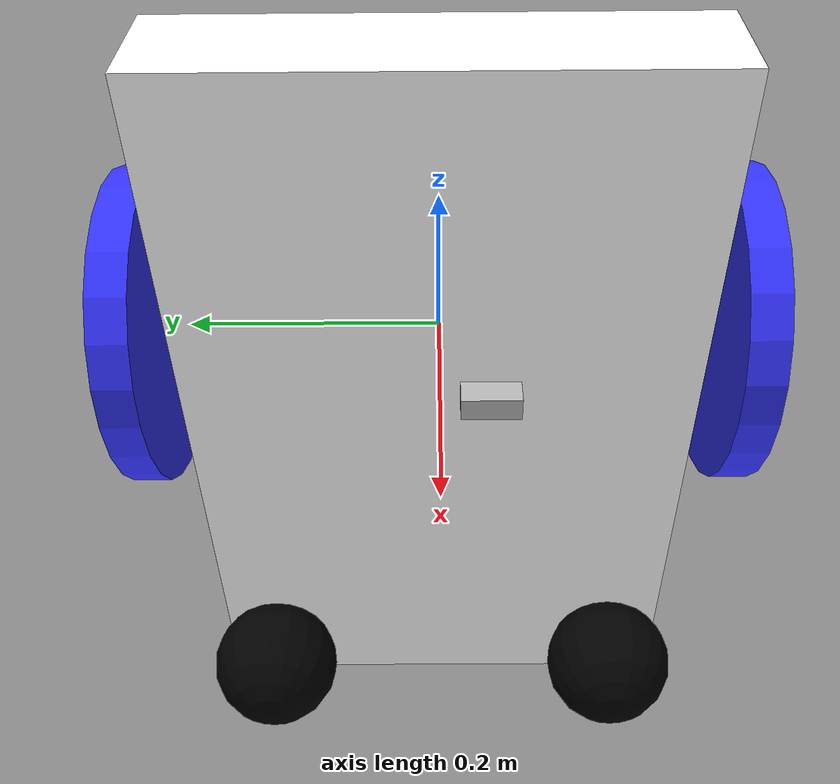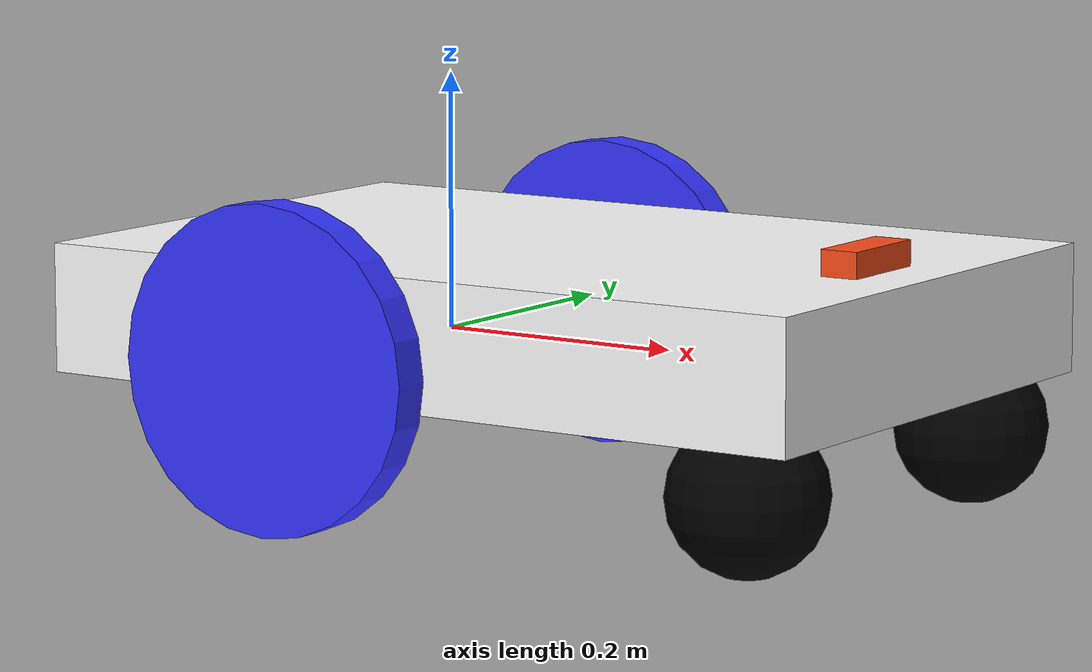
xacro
<?xml version="1.0"?>
<robot xmlns:xacro="http://www.ros.org/wiki/xacro"  name="robot">

    <xacro:arg name="sim_mode" default="false"/>

    <xacro:include filename = "robot_core.xacro"/>
    <xacro:include filename = "imu.xacro"/>
    <xacro:include filename = "depth_camera.xacro"/>
    <xacro:include filename = "ros2_control.xacro"/>

</robot>

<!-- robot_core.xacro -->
<robot xmlns:xacro="http://www.ros.org/wiki/xacro"  name="robot">

    <xacro:include filename="inertial_macros.xacro"/>

    <material name="white" >
        <color rgba="1 1 1 1" />
    </material>

    <material name="orange" >
        <color rgba="1 0.3 0.1 1" />
    </material>

    <material name="black" >
        <color rgba="0 0 0 1" />
    </material>

    <material name="blue" >
        <color rgba="0.2 0.2 1 1" />
    </material>

    <!-- BASE LINK  -->

    <link name="base_link">

    </link>

    <joint name="base_footprint_joint" type="fixed">
        <parent link="base_link"/>
        <child link="base_footprint"/>
    </joint>

    <link name="base_footprint">

    </link>

    <!-- CHASSIS LINK -->

    <joint name="chassis_joint" type="fixed">
        <parent link="base_link"/>
        <child link="chassis"/>
        <origin xyz="-0.22 0 -0.05"/>
    </joint>

    <link name="chassis">
        <visual>
            <origin xyz="0.325 0 .075"/>
            <geometry>
                <box size="0.65 0.43 0.10"/>
            </geometry>
            <material name="white"/>
        </visual>
        <collision>
            <origin xyz="0.325 0 .075"/>
            <geometry>
                <box size="0.65 0.43 0.15"/>
            </geometry>
        </collision>
        <xacro:inertial_box mass="1.5" x="0.65" y="0.43" z="0.15">
            <origin xyz="0.325 0 0.075" rpy="0 0 0"/>
        </xacro:inertial_box>
    </link>

    <!-- WHEELS -->

    <joint name="left_wheel_joint" type="continuous">
        <parent link="base_link"/>
        <child link="left_wheel"/>
        <origin xyz="0 0.215 0" rpy="-${pi/2} 0 0"/>
        <axis xyz="0 0 1"/>
    </joint>

    <link name="left_wheel">
        <visual>
            <origin xyz="0 0 .015"/>
            <geometry>
                <cylinder radius=".125" length=".03"/>
            </geometry>
            <material name="blue"/>
        </visual>
        <collision>
            <origin xyz="0 0 .015"/>
            <geometry>
                <cylinder radius=".125" length=".03"/>
            </geometry>
        </collision>
        <xacro:inertial_cylinder mass="0.5" length="0.03" radius="0.125">
            <origin xyz="0 0 .015" rpy="0 0 0"/>
        </xacro:inertial_cylinder>
    </link>

    <joint name="right_wheel_joint" type="continuous">
        <parent link="base_link"/>
        <child link="right_wheel"/>
        <origin xyz="0 -0.215 0" rpy="${pi/2} 0 0"/>
        <axis xyz="0 0 -1"/>
    </joint>

    <link name="right_wheel">
        <visual>
            <origin xyz="0 0 .015"/>
            <geometry>
                <cylinder radius=".125" length=".03"/>
            </geometry>
            <material name="blue"/>
        </visual>
        <collision>
            <origin xyz="0 0 .015"/>
            <geometry>
                <cylinder radius=".125" length=".03"/>
            </geometry>
        </collision>
        <xacro:inertial_cylinder mass="0.5" length="0.03" radius="0.125">
            <origin xyz="0 0 .015" rpy="0 0 0"/>
        </xacro:inertial_cylinder>
    </link>

    <!-- CASTER WHEELS -->

    <joint name="right_caster_joint" type="fixed">
        <parent link="base_link"/>
        <child link="right_caster"/>
        <origin xyz="0.37 -0.165 -.065"/>
    </joint>

    <link name="right_caster">
        <visual>
            <origin xyz="0 0 0"/>
            <geometry>
                <sphere radius=".06"/>
            </geometry>
            <material name="black"/>
        </visual>
        <collision>
            <geometry>
                <sphere radius=".06"/>
            </geometry>
        </collision>
        <xacro:inertial_sphere mass="0.5" radius="0.06">
            <origin xyz="0 0 0" rpy="0 0 0"/>
        </xacro:inertial_sphere>
    </link>

    <gazebo reference="right_caster">
        <material>Gazebo/White</material>
        <mu1 value="0.001"/>
        <mu2 value="0.001"/>
    </gazebo>

    <joint name="left_caster_joint" type="fixed">
        <parent link="base_link"/>
        <child link="left_caster"/>
        <origin xyz="0.37 0.165 -.065"/>
    </joint>

    <link name="left_caster">
        <visual>
            <origin xyz="0 0 0"/>
            <geometry>
                <sphere radius=".06"/>
            </geometry>
            <material name="black"/>
        </visual>
        <collision>
            <geometry>
                <sphere radius=".06"/>
            </geometry>
        </collision>
        <xacro:inertial_sphere mass="0.5" radius="0.06">
            <origin xyz="0 0 0" rpy="0 0 0"/>
        </xacro:inertial_sphere>
    </link>

    <gazebo reference="left_caster">
        <material>Gazebo/White</material>
        <mu1 value="0.001"/>
        <mu2 value="0.001"/>
    </gazebo>
</robot>

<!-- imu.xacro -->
<robot xmlns:xacro="http://www.ros.org/wiki/xacro" name="robot">

    <joint name="imu_joint" type="fixed">
      <parent link="base_link"/>
      <child link="imu_link"/>
      <origin xyz=".051 -.042 -0.024" rpy="0 ${pi/2} 0"/>
    </joint>

    <link name="imu_link">
      <child link="imu_sensor"/>
      <origin xyz="0 0 0" rpy="0 0 0"/>
      <visual>
        <geometry>
          <box size="0.05 0.05 0.02"/>
        </geometry>
      </visual>
      <collision>
        <geometry>
          <box size="0.05 0.05 0.02"/>
        </geometry>
      </collision>
    </link>

    <xacro:if value="$(arg sim_mode)">
      <gazebo reference="imu_link">
        <sensor name="imu_sensor" type="imu">
          <always_on>1</always_on>
          <update_rate>50</update_rate>
          <visualize>true</visualize>
          <topic>imu</topic>
          <imu>
            <enable_orientation>0</enable_orientation>
            <angular_velocity>
              <x>
              </x>
              <y>
              </y>
              <z>
              </z>
            </angular_velocity>
            <linear_acceleration>
              <x>
              </x>
              <y>
              </y>
              <z>
              </z>
            </linear_acceleration>
          </imu>
        </sensor>
      </gazebo>
    </xacro:if>

</robot>

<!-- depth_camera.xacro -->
<robot xmlns:xacro="http://www.ros.org/wiki/xacro" >

    <joint name="camera_joint" type="fixed">
        <parent link="base_link"/>
        <child link="camera_link"/>
        <origin xyz="0.37 0 0.08" rpy="0 0 0"/>
    </joint>

    <link name="camera_link">
        <visual>
            <geometry>
                <box size="0.03 0.08 0.03"/>
            </geometry>
            <material name="orange"/>
        </visual>
    </link>

    <joint name="camera_optical_joint" type="fixed">
        <parent link="camera_link"/>
        <child link="camera_link_optical"/>
        <origin xyz="0 0 0" rpy="${-pi/2} 0 ${-pi/2}"/>
    </joint>

    <link name="camera_link_optical"></link>

    <gazebo reference="camera_link">
        <material>Gazebo/Red</material>

        <sensor name="camera" type="depth">
            <pose> 0 0 0 0 0 0 </pose>
            <visualize>true</visualize>
            <update_rate>10</update_rate>
            <camera>
                <horizontal_fov>1.089</horizontal_fov>
                <image>
                    <format>B8G8R8</format>
                    <width>640</width>
                    <height>480</height>
                </image>
                <clip>
                    <near>0.05</near>
                    <far>8.0</far>
                </clip>
            </camera>
            <plugin name="camera_controller" filename="libgazebo_ros_camera.so">
                <frame_name>camera_link_optical</frame_name>
                <min_depth>0.1</min_depth>
                <max_depth>100.0</max_depth>
            </plugin>
        </sensor>
    </gazebo>

</robot>
